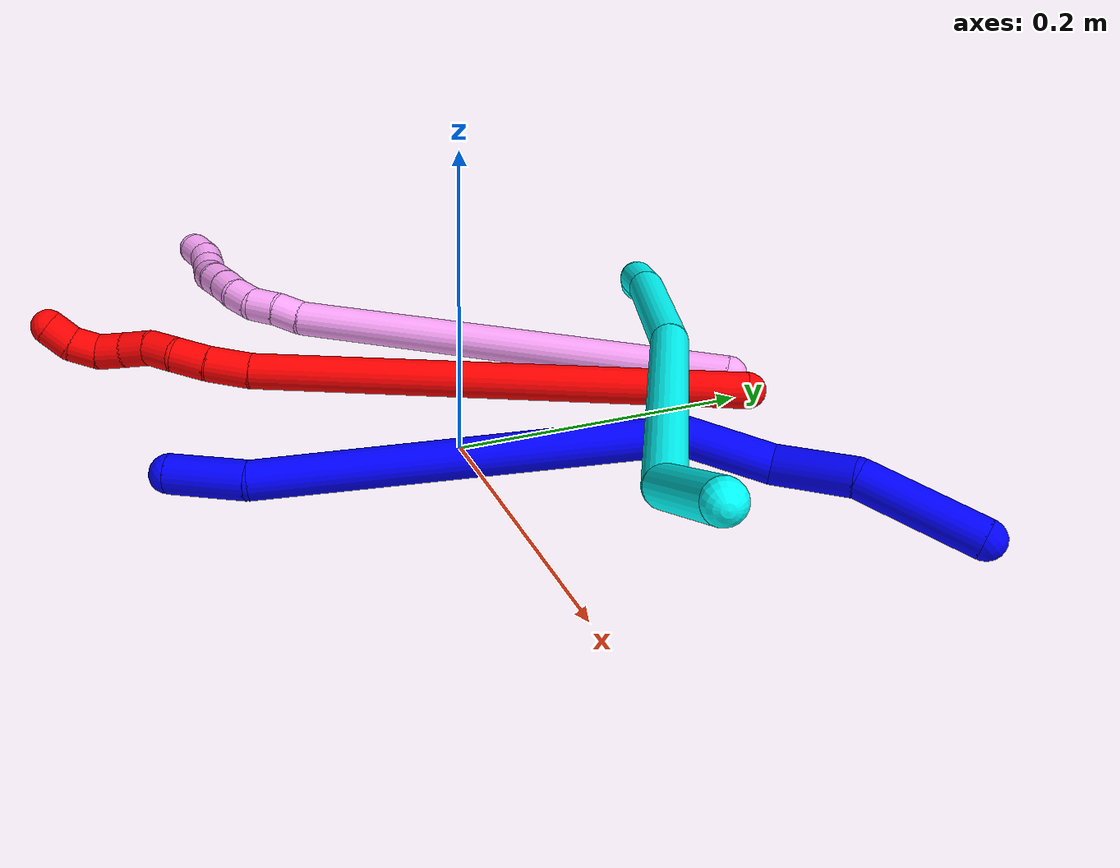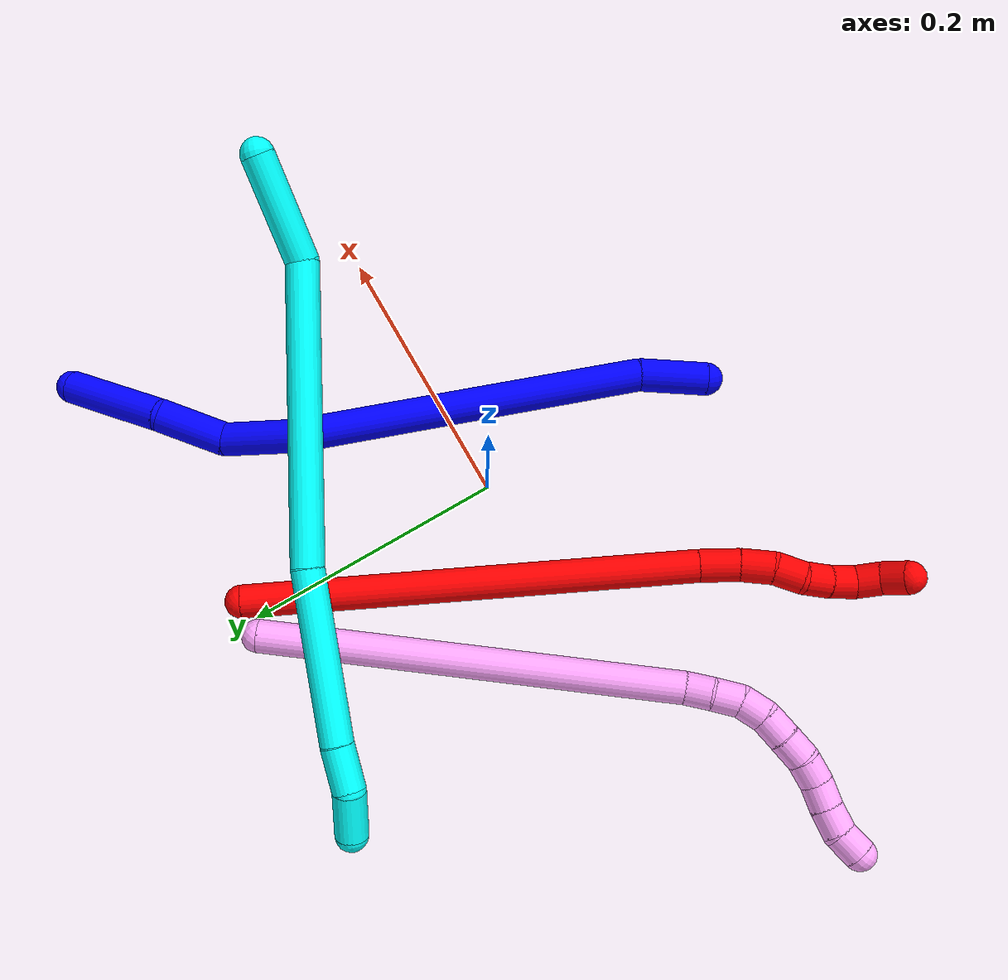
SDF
<sdf version="1.7">
 <world name="default">
  <plugin name="TubeGeneratorPlugin" filename="libtube_generator_plugin.so"/>
  <model name="photoneo_s_sensor">
   <static>1</static>
   <pose>0 0 2 1.57079 1.57079 3.14159</pose>
   <link name="link">
    <inertial><mass>0.1</mass></inertial>
    <sensor name="sensor" type="depth">
     <update_rate>30</update_rate>
     <camera>
      <horizontal_fov>1.22</horizontal_fov>
      <image><width>1920</width><height>1200</height><format>B8G8R8</format></image>
      <clip><near>0.1</near><far>4</far></clip>
      <depth_camera><output>points</output></depth_camera>
     </camera>
     <plugin name="camera_plugin" filename="libgazebo_ros_depth_camera.so">
      <baseline>0.2</baseline>
      <alwaysOn>1</alwaysOn>
      <updateRate>0.0</updateRate>
      <cameraName>camera_ir</cameraName>
      <imageTopicName>/camera/color/image_raw</imageTopicName>
      <cameraInfoTopicName>/camera/color/camera_info</cameraInfoTopicName>
      <depthImageTopicName>/camera/depth/image_raw</depthImageTopicName>
      <depthImageCameraInfoTopicName>/camera/depth/camera_info</depthImageCameraInfoTopicName>
      <pointCloudTopicName>/camera/depth/points</pointCloudTopicName>
      <frameName>fr_optical</frameName>
      <pointCloudCutoff>0.1</pointCloudCutoff>
      <pointCloudCutoffMax>2.0</pointCloudCutoffMax>
      <distortionK1>0</distortionK1>
      <distortionK2>0</distortionK2>
      <distortionK3>0</distortionK3>
      <distortionT1>0</distortionT1>
      <distortionT2>0</distortionT2>
      <CxPrime>0</CxPrime>
      <Cx>0</Cx>
      <Cy>0</Cy>
      <focalLength>0</focalLength>
      <hackBaseline>0</hackBaseline>
     </plugin>
    </sensor>
   </link>
  </model>
  <gravity>0 0 -9.8</gravity>
  <magnetic_field>6e-06 2.3e-05 -4.2e-05</magnetic_field>
  <atmosphere type="adiabatic"/>
  <physics name="default_physics" default="0" type="ode">
   <max_step_size>0.003</max_step_size>
   <real_time_factor>1</real_time_factor>
   <real_time_update_rate>1000</real_time_update_rate>
   <max_contacts>10000</max_contacts>
   <ode>
    <solver>
     <type>quick</type>
     <iters>100</iters>
     <sor>1.3</sor>
     <use_dynamic_moi_rescaling>0</use_dynamic_moi_rescaling>
    </solver>
    <constraints>
     <contact_max_correcting_vel>0</contact_max_correcting_vel>
     <contact_surface_layer>0.001</contact_surface_layer>
     <cfm>0</cfm>
     <erp>0.2</erp>
    </constraints>
   </ode>
  </physics>
  <scene><ambient>0.4 0.4 0.4 1</ambient><background>0.7 0.7 0.7 1</background><shadows>0</shadows></scene>
  <audio><device>default</device></audio>
  <spherical_coordinates>
   <surface_model>EARTH_WGS84</surface_model>
   <latitude_deg>0</latitude_deg>
   <longitude_deg>0</longitude_deg>
   <elevation>0</elevation>
   <heading_deg>0</heading_deg>
  </spherical_coordinates>
  <model name="bin">
   <static>1</static>
   <link name="bottom">
    <collision name="collision-bottom">
     <pose>0 0 -0.01 0 -0 0</pose>
     <geometry><box><size>0.8 0.6 0.02</size></box></geometry>
     <surface>
      <friction><ode><mu>100</mu><mu2>100</mu2></ode></friction>
      <contact><collide_bitmask>65535</collide_bitmask></contact>
     </surface>
    </collision>
   </link>
   <link name="west_wall">
    <collision name="collision-west_wall">
     <pose>-0.41 0 0.1 0 -0 0</pose>
     <geometry><box><size>0.02 0.6 0.2</size></box></geometry>
     <surface>
      <friction><ode><mu>100</mu><mu2>100</mu2></ode></friction>
      <contact><collide_bitmask>65535</collide_bitmask></contact>
     </surface>
    </collision>
   </link>
   <link name="east_wall">
    <collision name="collision-east_wall">
     <pose>0.41 0 0.1 0 -0 0</pose>
     <geometry><box><size>0.02 0.6 0.2</size></box></geometry>
     <surface>
      <friction><ode><mu>100</mu><mu2>100</mu2></ode></friction>
      <contact><collide_bitmask>65535</collide_bitmask></contact>
     </surface>
    </collision>
   </link>
   <link name="south_wall">
    <collision name="collision-south_wall">
     <pose>0 -0.31 0.1 0 -0 0</pose>
     <geometry><box><size>0.8 0.02 0.2</size></box></geometry>
     <surface>
      <friction><ode><mu>100</mu><mu2>100</mu2></ode></friction>
      <contact><collide_bitmask>65535</collide_bitmask></contact>
     </surface>
    </collision>
   </link>
   <link name="north_wall">
    <collision name="collision-north_wall">
     <pose>0 0.31 0.1 0 -0 0</pose>
     <geometry><box><size>0.8 0.02 0.2</size></box></geometry>
     <surface>
      <friction><ode><mu>100</mu><mu2>100</mu2></ode></friction>
      <contact><collide_bitmask>65535</collide_bitmask></contact>
     </surface>
    </collision>
   </link>
  </model>
  <model name="1">
   <static>0</static>
   <link name="1">
    <collision name="collision-cylinder-e_1_1_4">
     <pose>0.01556 0.009196 0.018321 -0.465224 0.649284 -0.15912</pose>
     <geometry><cylinder><radius>0.0125</radius><length>0.051472</length></cylinder></geometry>
     <surface>
      <friction><ode><mu>1.16</mu><mu2>1.16</mu2><slip1>0</slip1><slip2>0</slip2></ode></friction>
      <contact><ode><kp>1e+06</kp><kd>1</kd><max_vel>0</max_vel><min_depth>0.001</min_depth></ode></contact>
     </surface>
    </collision>
    <visual name="visual-cylinder-e_1_1_4">
     <pose>0.01556 0.009196 0.018321 -0.465224 0.649284 -0.15912</pose>
     <geometry><cylinder><radius>0.0125</radius><length>0.051472</length></cylinder></geometry>
     <material><ambient>0 0 1 1</ambient></material>
    </visual>
    <collision name="collision-cylinder-e_2_4_5">
     <pose>0.080433 0.075555 0.143858 -0.489808 0.385544 -0.09749</pose>
     <geometry><cylinder><radius>0.0125</radius><length>0.262256</length></cylinder></geometry>
     <surface>
      <friction><ode><mu>1.16</mu><mu2>1.16</mu2><slip1>0</slip1><slip2>0</slip2></ode></friction>
      <contact><ode><kp>1e+06</kp><kd>1</kd><max_vel>0</max_vel><min_depth>0.001</min_depth></ode></contact>
     </surface>
    </collision>
    <visual name="visual-cylinder-e_2_4_5">
     <pose>0.080433 0.075555 0.143858 -0.489808 0.385544 -0.09749</pose>
     <geometry><cylinder><radius>0.0125</radius><length>0.262256</length></cylinder></geometry>
     <material><ambient>0 0 1 1</ambient></material>
    </visual>
    <collision name="collision-cylinder-e_3_5_6">
     <pose>0.147384 0.149477 0.26589 -0.846908 0.667665 -0.310122</pose>
     <geometry><cylinder><radius>0.0125</radius><length>0.056974</length></cylinder></geometry>
     <surface>
      <friction><ode><mu>1.16</mu><mu2>1.16</mu2><slip1>0</slip1><slip2>0</slip2></ode></friction>
      <contact><ode><kp>1e+06</kp><kd>1</kd><max_vel>0</max_vel><min_depth>0.001</min_depth></ode></contact>
     </surface>
    </collision>
    <visual name="visual-cylinder-e_3_5_6">
     <pose>0.147384 0.149477 0.26589 -0.846908 0.667665 -0.310122</pose>
     <geometry><cylinder><radius>0.0125</radius><length>0.056974</length></cylinder></geometry>
     <material><ambient>0 0 1 1</ambient></material>
    </visual>
    <collision name="collision-cylinder-e_4_6_7">
     <pose>0.184958 0.169584 0.296692 -0.206421 0.884421 -0.098007</pose>
     <geometry><cylinder><radius>0.0125</radius><length>0.051545</length></cylinder></geometry>
     <surface>
      <friction><ode><mu>1.16</mu><mu2>1.16</mu2><slip1>0</slip1><slip2>0</slip2></ode></friction>
      <contact><ode><kp>1e+06</kp><kd>1</kd><max_vel>0</max_vel><min_depth>0.001</min_depth></ode></contact>
     </surface>
    </collision>
    <visual name="visual-cylinder-e_4_6_7">
     <pose>0.184958 0.169584 0.296692 -0.206421 0.884421 -0.098007</pose>
     <geometry><cylinder><radius>0.0125</radius><length>0.051545</length></cylinder></geometry>
     <material><ambient>0 0 1 1</ambient></material>
    </visual>
    <collision name="collision-cylinder-e_5_7_2">
     <pose>0.237505 0.18767 0.327867 -0.770331 0.995136 -0.433483</pose>
     <geometry><cylinder><radius>0.0125</radius><length>0.077753</length></cylinder></geometry>
     <surface>
      <friction><ode><mu>1.16</mu><mu2>1.16</mu2><slip1>0</slip1><slip2>0</slip2></ode></friction>
      <contact><ode><kp>1e+06</kp><kd>1</kd><max_vel>0</max_vel><min_depth>0.001</min_depth></ode></contact>
     </surface>
    </collision>
    <visual name="visual-cylinder-e_5_7_2">
     <pose>0.237505 0.18767 0.327867 -0.770331 0.995136 -0.433483</pose>
     <geometry><cylinder><radius>0.0125</radius><length>0.077753</length></cylinder></geometry>
     <material><ambient>0 0 1 1</ambient></material>
    </visual>
    <collision name="collision-sphere-2">
     <pose>0.270115 0.202408 0.343056 0 -0 0</pose>
     <geometry><sphere><radius>0.0125</radius></sphere></geometry>
     <surface>
      <friction><ode><mu>1.16</mu><mu2>1.16</mu2><slip1>0</slip1><slip2>0</slip2></ode></friction>
      <contact><ode><kp>1e+06</kp><kd>1</kd><max_vel>0</max_vel><min_depth>0.001</min_depth></ode></contact>
     </surface>
    </collision>
    <visual name="visual-sphere-2">
     <pose>0.270115 0.202408 0.343056 0 -0 0</pose>
     <geometry><sphere><radius>0.0125</radius></sphere></geometry>
     <material><ambient>0 0 1 1</ambient></material>
    </visual>
    <collision name="collision-sphere-7">
     <pose>0.204894 0.172932 0.312678 0 -0 0</pose>
     <geometry><sphere><radius>0.0125</radius></sphere></geometry>
     <surface>
      <friction><ode><mu>1.16</mu><mu2>1.16</mu2><slip1>0</slip1><slip2>0</slip2></ode></friction>
      <contact><ode><kp>1e+06</kp><kd>1</kd><max_vel>0</max_vel><min_depth>0.001</min_depth></ode></contact>
     </surface>
    </collision>
    <visual name="visual-sphere-7">
     <pose>0.204894 0.172932 0.312678 0 -0 0</pose>
     <geometry><sphere><radius>0.0125</radius></sphere></geometry>
     <material><ambient>0 0 1 1</ambient></material>
    </visual>
    <collision name="collision-sphere-6">
     <pose>0.165022 0.166237 0.280706 0 -0 0</pose>
     <geometry><sphere><radius>0.0125</radius></sphere></geometry>
     <surface>
      <friction><ode><mu>1.16</mu><mu2>1.16</mu2><slip1>0</slip1><slip2>0</slip2></ode></friction>
      <contact><ode><kp>1e+06</kp><kd>1</kd><max_vel>0</max_vel><min_depth>0.001</min_depth></ode></contact>
     </surface>
    </collision>
    <visual name="visual-sphere-6">
     <pose>0.165022 0.166237 0.280706 0 -0 0</pose>
     <geometry><sphere><radius>0.0125</radius></sphere></geometry>
     <material><ambient>0 0 1 1</ambient></material>
    </visual>
    <collision name="collision-sphere-5">
     <pose>0.129746 0.132716 0.251075 0 -0 0</pose>
     <geometry><sphere><radius>0.0125</radius></sphere></geometry>
     <surface>
      <friction><ode><mu>1.16</mu><mu2>1.16</mu2><slip1>0</slip1><slip2>0</slip2></ode></friction>
      <contact><ode><kp>1e+06</kp><kd>1</kd><max_vel>0</max_vel><min_depth>0.001</min_depth></ode></contact>
     </surface>
    </collision>
    <visual name="visual-sphere-5">
     <pose>0.129746 0.132716 0.251075 0 -0 0</pose>
     <geometry><sphere><radius>0.0125</radius></sphere></geometry>
     <material><ambient>0 0 1 1</ambient></material>
    </visual>
    <collision name="collision-sphere-1">
     <geometry><sphere><radius>0.0125</radius></sphere></geometry>
     <surface>
      <friction><ode><mu>1.16</mu><mu2>1.16</mu2><slip1>0</slip1><slip2>0</slip2></ode></friction>
      <contact><ode><kp>1e+06</kp><kd>1</kd><max_vel>0</max_vel><min_depth>0.001</min_depth></ode></contact>
     </surface>
    </collision>
    <visual name="visual-sphere-1">
     <geometry><sphere><radius>0.0125</radius></sphere></geometry>
     <material><ambient>0 0 1 1</ambient></material>
    </visual>
    <collision name="collision-sphere-4">
     <pose>0.031121 0.018393 0.036641 0 -0 0</pose>
     <geometry><sphere><radius>0.0125</radius></sphere></geometry>
     <surface>
      <friction><ode><mu>1.16</mu><mu2>1.16</mu2><slip1>0</slip1><slip2>0</slip2></ode></friction>
      <contact><ode><kp>1e+06</kp><kd>1</kd><max_vel>0</max_vel><min_depth>0.001</min_depth></ode></contact>
     </surface>
    </collision>
    <visual name="visual-sphere-4">
     <pose>0.031121 0.018393 0.036641 0 -0 0</pose>
     <geometry><sphere><radius>0.0125</radius></sphere></geometry>
     <material><ambient>0 0 1 1</ambient></material>
    </visual>
    <inertial>
     <pose>0.116585 0.104275 0.18921 0 -0 0</pose>
     <mass>0.5</mass>
     <inertia>
      <ixx>0.001317</ixx>
      <ixy>0</ixy>
      <ixz>0</ixz>
      <iyy>0.001295</iyy>
      <iyz>0</iyz>
      <izz>-0.0013</izz>
     </inertia>
    </inertial>
   </link>
   <pose>-0.011348 -0.184991 0.012404 -0.869664 0.242843 0.110497</pose>
  </model>
  <model name="2">
   <static>0</static>
   <link name="2">
    <collision name="collision-cylinder-e_1_1_4">
     <pose>-0.064996 -0.154503 0.031432 1.3701 -0.391011 -0.320827</pose>
     <geometry><cylinder><radius>0.0125</radius><length>0.341078</length></cylinder></geometry>
     <surface>
      <friction><ode><mu>1.16</mu><mu2>1.16</mu2><slip1>0</slip1><slip2>0</slip2></ode></friction>
      <contact><ode><kp>1e+06</kp><kd>1</kd><max_vel>0</max_vel><min_depth>0.001</min_depth></ode></contact>
     </surface>
    </collision>
    <visual name="visual-cylinder-e_1_1_4">
     <pose>-0.064996 -0.154503 0.031432 1.3701 -0.391011 -0.320827</pose>
     <geometry><cylinder><radius>0.0125</radius><length>0.341078</length></cylinder></geometry>
     <material><ambient>1 0 0 1</ambient></material>
    </visual>
    <collision name="collision-cylinder-e_2_4_5">
     <pose>-0.135421 -0.322531 0.067508 1.24001 -0.362782 -0.260393</pose>
     <geometry><cylinder><radius>0.0125</radius><length>0.030594</length></cylinder></geometry>
     <surface>
      <friction><ode><mu>1.16</mu><mu2>1.16</mu2><slip1>0</slip1><slip2>0</slip2></ode></friction>
      <contact><ode><kp>1e+06</kp><kd>1</kd><max_vel>0</max_vel><min_depth>0.001</min_depth></ode></contact>
     </surface>
    </collision>
    <visual name="visual-cylinder-e_2_4_5">
     <pose>-0.135421 -0.322531 0.067508 1.24001 -0.362782 -0.260393</pose>
     <geometry><cylinder><radius>0.0125</radius><length>0.030594</length></cylinder></geometry>
     <material><ambient>1 0 0 1</ambient></material>
    </visual>
    <collision name="collision-cylinder-e_3_5_6">
     <pose>-0.145853 -0.346325 0.077238 1.11093 -0.411686 -0.257748</pose>
     <geometry><cylinder><radius>0.0125</radius><length>0.025005</length></cylinder></geometry>
     <surface>
      <friction><ode><mu>1.16</mu><mu2>1.16</mu2><slip1>0</slip1><slip2>0</slip2></ode></friction>
      <contact><ode><kp>1e+06</kp><kd>1</kd><max_vel>0</max_vel><min_depth>0.001</min_depth></ode></contact>
     </surface>
    </collision>
    <visual name="visual-cylinder-e_3_5_6">
     <pose>-0.145853 -0.346325 0.077238 1.11093 -0.411686 -0.257748</pose>
     <geometry><cylinder><radius>0.0125</radius><length>0.025005</length></cylinder></geometry>
     <material><ambient>1 0 0 1</ambient></material>
    </visual>
    <collision name="collision-cylinder-e_4_6_7">
     <pose>-0.157563 -0.363989 0.087103 0.997139 -0.650859 -0.363369</pose>
     <geometry><cylinder><radius>0.0125</radius><length>0.02214</length></cylinder></geometry>
     <surface>
      <friction><ode><mu>1.16</mu><mu2>1.16</mu2><slip1>0</slip1><slip2>0</slip2></ode></friction>
      <contact><ode><kp>1e+06</kp><kd>1</kd><max_vel>0</max_vel><min_depth>0.001</min_depth></ode></contact>
     </surface>
    </collision>
    <visual name="visual-cylinder-e_4_6_7">
     <pose>-0.157563 -0.363989 0.087103 0.997139 -0.650859 -0.363369</pose>
     <geometry><cylinder><radius>0.0125</radius><length>0.02214</length></cylinder></geometry>
     <material><ambient>1 0 0 1</ambient></material>
    </visual>
    <collision name="collision-cylinder-e_5_7_8">
     <pose>-0.170595 -0.379064 0.093237 1.39614 -0.681676 -0.578462</pose>
     <geometry><cylinder><radius>0.0125</radius><length>0.020079</length></cylinder></geometry>
     <surface>
      <friction><ode><mu>1.16</mu><mu2>1.16</mu2><slip1>0</slip1><slip2>0</slip2></ode></friction>
      <contact><ode><kp>1e+06</kp><kd>1</kd><max_vel>0</max_vel><min_depth>0.001</min_depth></ode></contact>
     </surface>
    </collision>
    <visual name="visual-cylinder-e_5_7_8">
     <pose>-0.170595 -0.379064 0.093237 1.39614 -0.681676 -0.578462</pose>
     <geometry><cylinder><radius>0.0125</radius><length>0.020079</length></cylinder></geometry>
     <material><ambient>1 0 0 1</ambient></material>
    </visual>
    <collision name="collision-cylinder-e_6_8_9">
     <pose>-0.182415 -0.395369 0.09581 1.43057 -0.562543 -0.49186</pose>
     <geometry><cylinder><radius>0.0125</radius><length>0.020601</length></cylinder></geometry>
     <surface>
      <friction><ode><mu>1.16</mu><mu2>1.16</mu2><slip1>0</slip1><slip2>0</slip2></ode></friction>
      <contact><ode><kp>1e+06</kp><kd>1</kd><max_vel>0</max_vel><min_depth>0.001</min_depth></ode></contact>
     </surface>
    </collision>
    <visual name="visual-cylinder-e_6_8_9">
     <pose>-0.182415 -0.395369 0.09581 1.43057 -0.562543 -0.49186</pose>
     <geometry><cylinder><radius>0.0125</radius><length>0.020601</length></cylinder></geometry>
     <material><ambient>1 0 0 1</ambient></material>
    </visual>
    <collision name="collision-cylinder-e_7_9_10">
     <pose>-0.189438 -0.413375 0.100836 1.18507 -0.149926 -0.101038</pose>
     <geometry><cylinder><radius>0.0125</radius><length>0.020474</length></cylinder></geometry>
     <surface>
      <friction><ode><mu>1.16</mu><mu2>1.16</mu2><slip1>0</slip1><slip2>0</slip2></ode></friction>
      <contact><ode><kp>1e+06</kp><kd>1</kd><max_vel>0</max_vel><min_depth>0.001</min_depth></ode></contact>
     </surface>
    </collision>
    <visual name="visual-cylinder-e_7_9_10">
     <pose>-0.189438 -0.413375 0.100836 1.18507 -0.149926 -0.101038</pose>
     <geometry><cylinder><radius>0.0125</radius><length>0.020474</length></cylinder></geometry>
     <material><ambient>1 0 0 1</ambient></material>
    </visual>
    <collision name="collision-cylinder-e_8_10_2">
     <pose>-0.190799 -0.430346 0.111172 0.860655 0.016792 0.007708</pose>
     <geometry><cylinder><radius>0.0125</radius><length>0.02003</length></cylinder></geometry>
     <surface>
      <friction><ode><mu>1.16</mu><mu2>1.16</mu2><slip1>0</slip1><slip2>0</slip2></ode></friction>
      <contact><ode><kp>1e+06</kp><kd>1</kd><max_vel>0</max_vel><min_depth>0.001</min_depth></ode></contact>
     </surface>
    </collision>
    <visual name="visual-cylinder-e_8_10_2">
     <pose>-0.190799 -0.430346 0.111172 0.860655 0.016792 0.007708</pose>
     <geometry><cylinder><radius>0.0125</radius><length>0.02003</length></cylinder></geometry>
     <material><ambient>1 0 0 1</ambient></material>
    </visual>
    <collision name="collision-sphere-2">
     <pose>-0.19063 -0.437939 0.1177 0 -0 0</pose>
     <geometry><sphere><radius>0.0125</radius></sphere></geometry>
     <surface>
      <friction><ode><mu>1.16</mu><mu2>1.16</mu2><slip1>0</slip1><slip2>0</slip2></ode></friction>
      <contact><ode><kp>1e+06</kp><kd>1</kd><max_vel>0</max_vel><min_depth>0.001</min_depth></ode></contact>
     </surface>
    </collision>
    <visual name="visual-sphere-2">
     <pose>-0.19063 -0.437939 0.1177 0 -0 0</pose>
     <geometry><sphere><radius>0.0125</radius></sphere></geometry>
     <material><ambient>1 0 0 1</ambient></material>
    </visual>
    <collision name="collision-sphere-10">
     <pose>-0.190967 -0.422753 0.104644 0 -0 0</pose>
     <geometry><sphere><radius>0.0125</radius></sphere></geometry>
     <surface>
      <friction><ode><mu>1.16</mu><mu2>1.16</mu2><slip1>0</slip1><slip2>0</slip2></ode></friction>
      <contact><ode><kp>1e+06</kp><kd>1</kd><max_vel>0</max_vel><min_depth>0.001</min_depth></ode></contact>
     </surface>
    </collision>
    <visual name="visual-sphere-10">
     <pose>-0.190967 -0.422753 0.104644 0 -0 0</pose>
     <geometry><sphere><radius>0.0125</radius></sphere></geometry>
     <material><ambient>1 0 0 1</ambient></material>
    </visual>
    <collision name="collision-sphere-9">
     <pose>-0.187909 -0.403996 0.097028 0 -0 0</pose>
     <geometry><sphere><radius>0.0125</radius></sphere></geometry>
     <surface>
      <friction><ode><mu>1.16</mu><mu2>1.16</mu2><slip1>0</slip1><slip2>0</slip2></ode></friction>
      <contact><ode><kp>1e+06</kp><kd>1</kd><max_vel>0</max_vel><min_depth>0.001</min_depth></ode></contact>
     </surface>
    </collision>
    <visual name="visual-sphere-9">
     <pose>-0.187909 -0.403996 0.097028 0 -0 0</pose>
     <geometry><sphere><radius>0.0125</radius></sphere></geometry>
     <material><ambient>1 0 0 1</ambient></material>
    </visual>
    <collision name="collision-sphere-4">
     <pose>-0.129993 -0.309005 0.062863 0 -0 0</pose>
     <geometry><sphere><radius>0.0125</radius></sphere></geometry>
     <surface>
      <friction><ode><mu>1.16</mu><mu2>1.16</mu2><slip1>0</slip1><slip2>0</slip2></ode></friction>
      <contact><ode><kp>1e+06</kp><kd>1</kd><max_vel>0</max_vel><min_depth>0.001</min_depth></ode></contact>
     </surface>
    </collision>
    <visual name="visual-sphere-4">
     <pose>-0.129993 -0.309005 0.062863 0 -0 0</pose>
     <geometry><sphere><radius>0.0125</radius></sphere></geometry>
     <material><ambient>1 0 0 1</ambient></material>
    </visual>
    <collision name="collision-sphere-1">
     <geometry><sphere><radius>0.0125</radius></sphere></geometry>
     <surface>
      <friction><ode><mu>1.16</mu><mu2>1.16</mu2><slip1>0</slip1><slip2>0</slip2></ode></friction>
      <contact><ode><kp>1e+06</kp><kd>1</kd><max_vel>0</max_vel><min_depth>0.001</min_depth></ode></contact>
     </surface>
    </collision>
    <visual name="visual-sphere-1">
     <geometry><sphere><radius>0.0125</radius></sphere></geometry>
     <material><ambient>1 0 0 1</ambient></material>
    </visual>
    <collision name="collision-sphere-8">
     <pose>-0.176921 -0.386741 0.094592 0 -0 0</pose>
     <geometry><sphere><radius>0.0125</radius></sphere></geometry>
     <surface>
      <friction><ode><mu>1.16</mu><mu2>1.16</mu2><slip1>0</slip1><slip2>0</slip2></ode></friction>
      <contact><ode><kp>1e+06</kp><kd>1</kd><max_vel>0</max_vel><min_depth>0.001</min_depth></ode></contact>
     </surface>
    </collision>
    <visual name="visual-sphere-8">
     <pose>-0.176921 -0.386741 0.094592 0 -0 0</pose>
     <geometry><sphere><radius>0.0125</radius></sphere></geometry>
     <material><ambient>1 0 0 1</ambient></material>
    </visual>
    <collision name="collision-sphere-5">
     <pose>-0.14085 -0.336057 0.072153 0 -0 0</pose>
     <geometry><sphere><radius>0.0125</radius></sphere></geometry>
     <surface>
      <friction><ode><mu>1.16</mu><mu2>1.16</mu2><slip1>0</slip1><slip2>0</slip2></ode></friction>
      <contact><ode><kp>1e+06</kp><kd>1</kd><max_vel>0</max_vel><min_depth>0.001</min_depth></ode></contact>
     </surface>
    </collision>
    <visual name="visual-sphere-5">
     <pose>-0.14085 -0.336057 0.072153 0 -0 0</pose>
     <geometry><sphere><radius>0.0125</radius></sphere></geometry>
     <material><ambient>1 0 0 1</ambient></material>
    </visual>
    <collision name="collision-sphere-6">
     <pose>-0.150856 -0.356592 0.082324 0 -0 0</pose>
     <geometry><sphere><radius>0.0125</radius></sphere></geometry>
     <surface>
      <friction><ode><mu>1.16</mu><mu2>1.16</mu2><slip1>0</slip1><slip2>0</slip2></ode></friction>
      <contact><ode><kp>1e+06</kp><kd>1</kd><max_vel>0</max_vel><min_depth>0.001</min_depth></ode></contact>
     </surface>
    </collision>
    <visual name="visual-sphere-6">
     <pose>-0.150856 -0.356592 0.082324 0 -0 0</pose>
     <geometry><sphere><radius>0.0125</radius></sphere></geometry>
     <material><ambient>1 0 0 1</ambient></material>
    </visual>
    <collision name="collision-sphere-7">
     <pose>-0.16427 -0.371386 0.091883 0 -0 0</pose>
     <geometry><sphere><radius>0.0125</radius></sphere></geometry>
     <surface>
      <friction><ode><mu>1.16</mu><mu2>1.16</mu2><slip1>0</slip1><slip2>0</slip2></ode></friction>
      <contact><ode><kp>1e+06</kp><kd>1</kd><max_vel>0</max_vel><min_depth>0.001</min_depth></ode></contact>
     </surface>
    </collision>
    <visual name="visual-sphere-7">
     <pose>-0.16427 -0.371386 0.091883 0 -0 0</pose>
     <geometry><sphere><radius>0.0125</radius></sphere></geometry>
     <material><ambient>1 0 0 1</ambient></material>
    </visual>
    <inertial>
     <pose>-0.096662 -0.224245 0.049566 0 -0 0</pose>
     <mass>0.5</mass>
     <inertia><ixx>0.001938</ixx><ixy>0</ixy><ixz>0</ixz><iyy>2e-05</iyy><iyz>0</iyz><izz>0.004299</izz></inertia>
    </inertial>
   </link>
   <pose>0.014627 0.202173 0.012439 -0.15413 -0.699908 0.080952</pose>
  </model>
  <model name="3">
   <static>0</static>
   <link name="3">
    <collision name="collision-cylinder-e_1_1_4">
     <pose>0.006557 0.011089 -0.037798 -2.85622 0.164948 -1.04425</pose>
     <geometry><cylinder><radius>0.0125</radius><length>0.079867</length></cylinder></geometry>
     <surface>
      <friction><ode><mu>1.16</mu><mu2>1.16</mu2><slip1>0</slip1><slip2>0</slip2></ode></friction>
      <contact><ode><kp>1e+06</kp><kd>1</kd><max_vel>0</max_vel><min_depth>0.001</min_depth></ode></contact>
     </surface>
    </collision>
    <visual name="visual-cylinder-e_1_1_4">
     <pose>0.006557 0.011089 -0.037798 -2.85622 0.164948 -1.04425</pose>
     <geometry><cylinder><radius>0.0125</radius><length>0.079867</length></cylinder></geometry>
     <material><ambient>0.003922 1 0.996078 1</ambient></material>
    </visual>
    <collision name="collision-cylinder-e_2_4_5">
     <pose>-0.008213 0.014715 -0.183865 3.07277 -0.194045 -2.46164</pose>
     <geometry><cylinder><radius>0.0125</radius><length>0.221203</length></cylinder></geometry>
     <surface>
      <friction><ode><mu>1.16</mu><mu2>1.16</mu2><slip1>0</slip1><slip2>0</slip2></ode></friction>
      <contact><ode><kp>1e+06</kp><kd>1</kd><max_vel>0</max_vel><min_depth>0.001</min_depth></ode></contact>
     </surface>
    </collision>
    <visual name="visual-cylinder-e_2_4_5">
     <pose>-0.008213 0.014715 -0.183865 3.07277 -0.194045 -2.46164</pose>
     <geometry><cylinder><radius>0.0125</radius><length>0.221203</length></cylinder></geometry>
     <material><ambient>0.003922 1 0.996078 1</ambient></material>
    </visual>
    <collision name="collision-cylinder-e_3_5_6">
     <pose>-0.032697 0.004941 -0.355505 3.10515 -0.049743 -1.87719</pose>
     <geometry><cylinder><radius>0.0125</radius><length>0.126983</length></cylinder></geometry>
     <surface>
      <friction><ode><mu>1.16</mu><mu2>1.16</mu2><slip1>0</slip1><slip2>0</slip2></ode></friction>
      <contact><ode><kp>1e+06</kp><kd>1</kd><max_vel>0</max_vel><min_depth>0.001</min_depth></ode></contact>
     </surface>
    </collision>
    <visual name="visual-cylinder-e_3_5_6">
     <pose>-0.032697 0.004941 -0.355505 3.10515 -0.049743 -1.87719</pose>
     <geometry><cylinder><radius>0.0125</radius><length>0.126983</length></cylinder></geometry>
     <material><ambient>0.003922 1 0.996078 1</ambient></material>
    </visual>
    <collision name="collision-cylinder-e_4_6_7">
     <pose>-0.035223 0.003061 -0.435957 -3.11647 0.036951 -1.94733</pose>
     <geometry><cylinder><radius>0.0125</radius><length>0.034197</length></cylinder></geometry>
     <surface>
      <friction><ode><mu>1.16</mu><mu2>1.16</mu2><slip1>0</slip1><slip2>0</slip2></ode></friction>
      <contact><ode><kp>1e+06</kp><kd>1</kd><max_vel>0</max_vel><min_depth>0.001</min_depth></ode></contact>
     </surface>
    </collision>
    <visual name="visual-cylinder-e_4_6_7">
     <pose>-0.035223 0.003061 -0.435957 -3.11647 0.036951 -1.94733</pose>
     <geometry><cylinder><radius>0.0125</radius><length>0.034197</length></cylinder></geometry>
     <material><ambient>0.003922 1 0.996078 1</ambient></material>
    </visual>
    <collision name="collision-cylinder-e_5_7_2">
     <pose>-0.037887 0.010237 -0.470355 -2.77004 -0.175536 0.875761</pose>
     <geometry><cylinder><radius>0.0125</radius><length>0.037751</length></cylinder></geometry>
     <surface>
      <friction><ode><mu>1.16</mu><mu2>1.16</mu2><slip1>0</slip1><slip2>0</slip2></ode></friction>
      <contact><ode><kp>1e+06</kp><kd>1</kd><max_vel>0</max_vel><min_depth>0.001</min_depth></ode></contact>
     </surface>
    </collision>
    <visual name="visual-cylinder-e_5_7_2">
     <pose>-0.037887 0.010237 -0.470355 -2.77004 -0.175536 0.875761</pose>
     <geometry><cylinder><radius>0.0125</radius><length>0.037751</length></cylinder></geometry>
     <material><ambient>0.003922 1 0.996078 1</ambient></material>
    </visual>
    <collision name="collision-sphere-2">
     <pose>-0.041184 0.016985 -0.487673 0 -0 0</pose>
     <geometry><sphere><radius>0.0125</radius></sphere></geometry>
     <surface>
      <friction><ode><mu>1.16</mu><mu2>1.16</mu2><slip1>0</slip1><slip2>0</slip2></ode></friction>
      <contact><ode><kp>1e+06</kp><kd>1</kd><max_vel>0</max_vel><min_depth>0.001</min_depth></ode></contact>
     </surface>
    </collision>
    <visual name="visual-sphere-2">
     <pose>-0.041184 0.016985 -0.487673 0 -0 0</pose>
     <geometry><sphere><radius>0.0125</radius></sphere></geometry>
     <material><ambient>0.003922 1 0.996078 1</ambient></material>
    </visual>
    <collision name="collision-sphere-7">
     <pose>-0.034591 0.00349 -0.453038 0 -0 0</pose>
     <geometry><sphere><radius>0.0125</radius></sphere></geometry>
     <surface>
      <friction><ode><mu>1.16</mu><mu2>1.16</mu2><slip1>0</slip1><slip2>0</slip2></ode></friction>
      <contact><ode><kp>1e+06</kp><kd>1</kd><max_vel>0</max_vel><min_depth>0.001</min_depth></ode></contact>
     </surface>
    </collision>
    <visual name="visual-sphere-7">
     <pose>-0.034591 0.00349 -0.453038 0 -0 0</pose>
     <geometry><sphere><radius>0.0125</radius></sphere></geometry>
     <material><ambient>0.003922 1 0.996078 1</ambient></material>
    </visual>
    <collision name="collision-sphere-6">
     <pose>-0.035854 0.002631 -0.418876 0 -0 0</pose>
     <geometry><sphere><radius>0.0125</radius></sphere></geometry>
     <surface>
      <friction><ode><mu>1.16</mu><mu2>1.16</mu2><slip1>0</slip1><slip2>0</slip2></ode></friction>
      <contact><ode><kp>1e+06</kp><kd>1</kd><max_vel>0</max_vel><min_depth>0.001</min_depth></ode></contact>
     </surface>
    </collision>
    <visual name="visual-sphere-6">
     <pose>-0.035854 0.002631 -0.418876 0 -0 0</pose>
     <geometry><sphere><radius>0.0125</radius></sphere></geometry>
     <material><ambient>0.003922 1 0.996078 1</ambient></material>
    </visual>
    <collision name="collision-sphere-5">
     <pose>-0.02954 0.007252 -0.292134 0 -0 0</pose>
     <geometry><sphere><radius>0.0125</radius></sphere></geometry>
     <surface>
      <friction><ode><mu>1.16</mu><mu2>1.16</mu2><slip1>0</slip1><slip2>0</slip2></ode></friction>
      <contact><ode><kp>1e+06</kp><kd>1</kd><max_vel>0</max_vel><min_depth>0.001</min_depth></ode></contact>
     </surface>
    </collision>
    <visual name="visual-sphere-5">
     <pose>-0.02954 0.007252 -0.292134 0 -0 0</pose>
     <geometry><sphere><radius>0.0125</radius></sphere></geometry>
     <material><ambient>0.003922 1 0.996078 1</ambient></material>
    </visual>
    <collision name="collision-sphere-1">
     <geometry><sphere><radius>0.0125</radius></sphere></geometry>
     <surface>
      <friction><ode><mu>1.16</mu><mu2>1.16</mu2><slip1>0</slip1><slip2>0</slip2></ode></friction>
      <contact><ode><kp>1e+06</kp><kd>1</kd><max_vel>0</max_vel><min_depth>0.001</min_depth></ode></contact>
     </surface>
    </collision>
    <visual name="visual-sphere-1">
     <geometry><sphere><radius>0.0125</radius></sphere></geometry>
     <material><ambient>0.003922 1 0.996078 1</ambient></material>
    </visual>
    <collision name="collision-sphere-4">
     <pose>0.013114 0.022178 -0.075596 0 -0 0</pose>
     <geometry><sphere><radius>0.0125</radius></sphere></geometry>
     <surface>
      <friction><ode><mu>1.16</mu><mu2>1.16</mu2><slip1>0</slip1><slip2>0</slip2></ode></friction>
      <contact><ode><kp>1e+06</kp><kd>1</kd><max_vel>0</max_vel><min_depth>0.001</min_depth></ode></contact>
     </surface>
    </collision>
    <visual name="visual-sphere-4">
     <pose>0.013114 0.022178 -0.075596 0 -0 0</pose>
     <geometry><sphere><radius>0.0125</radius></sphere></geometry>
     <material><ambient>0.003922 1 0.996078 1</ambient></material>
    </visual>
    <inertial>
     <pose>-0.01616 0.010519 -0.242996 0 -0 0</pose>
     <mass>0.5</mass>
     <inertia>
      <ixx>-0.001494</ixx>
      <ixy>0</ixy>
      <ixz>0</ixz>
      <iyy>-2.1e-05</iyy>
      <iyz>0</iyz>
      <izz>0.000193</izz>
     </inertia>
    </inertial>
   </link>
   <pose>0.270775 0.03187 0.109472 -1.40682 -0.00168 -1.87147</pose>
  </model>
  <model name="4">
   <static>0</static>
   <link name="4">
    <collision name="collision-cylinder-e_1_1_4">
     <pose>-0.101044 -0.087947 0.085402 0.80008 -0.689355 -0.301306</pose>
     <geometry><cylinder><radius>0.0125</radius><length>0.31773</length></cylinder></geometry>
     <surface>
      <friction><ode><mu>1.16</mu><mu2>1.16</mu2><slip1>0</slip1><slip2>0</slip2></ode></friction>
      <contact><ode><kp>1e+06</kp><kd>1</kd><max_vel>0</max_vel><min_depth>0.001</min_depth></ode></contact>
     </surface>
    </collision>
    <visual name="visual-cylinder-e_1_1_4">
     <pose>-0.101044 -0.087947 0.085402 0.80008 -0.689355 -0.301306</pose>
     <geometry><cylinder><radius>0.0125</radius><length>0.31773</length></cylinder></geometry>
     <material><ambient>1 0.65098 0.996078 1</ambient></material>
    </visual>
    <collision name="collision-cylinder-e_2_4_5">
     <pose>-0.210025 -0.179976 0.175826 0.682466 -0.886594 -0.334094</pose>
     <geometry><cylinder><radius>0.0125</radius><length>0.020481</length></cylinder></geometry>
     <surface>
      <friction><ode><mu>1.16</mu><mu2>1.16</mu2><slip1>0</slip1><slip2>0</slip2></ode></friction>
      <contact><ode><kp>1e+06</kp><kd>1</kd><max_vel>0</max_vel><min_depth>0.001</min_depth></ode></contact>
     </surface>
    </collision>
    <visual name="visual-cylinder-e_2_4_5">
     <pose>-0.210025 -0.179976 0.175826 0.682466 -0.886594 -0.334094</pose>
     <geometry><cylinder><radius>0.0125</radius><length>0.020481</length></cylinder></geometry>
     <material><ambient>1 0.65098 0.996078 1</ambient></material>
    </visual>
    <collision name="collision-cylinder-e_3_5_6">
     <pose>-0.225451 -0.18981 0.185438 0.897291 -0.794316 -0.398474</pose>
     <geometry><cylinder><radius>0.0125</radius><length>0.020999</length></cylinder></geometry>
     <surface>
      <friction><ode><mu>1.16</mu><mu2>1.16</mu2><slip1>0</slip1><slip2>0</slip2></ode></friction>
      <contact><ode><kp>1e+06</kp><kd>1</kd><max_vel>0</max_vel><min_depth>0.001</min_depth></ode></contact>
     </surface>
    </collision>
    <visual name="visual-cylinder-e_3_5_6">
     <pose>-0.225451 -0.18981 0.185438 0.897291 -0.794316 -0.398474</pose>
     <geometry><cylinder><radius>0.0125</radius><length>0.020999</length></cylinder></geometry>
     <material><ambient>1 0.65098 0.996078 1</ambient></material>
    </visual>
    <collision name="collision-cylinder-e_4_6_7">
     <pose>-0.2418 -0.200298 0.191473 1.27469 -1.06101 -0.819494</pose>
     <geometry><cylinder><radius>0.0125</radius><length>0.020299</length></cylinder></geometry>
     <surface>
      <friction><ode><mu>1.16</mu><mu2>1.16</mu2><slip1>0</slip1><slip2>0</slip2></ode></friction>
      <contact><ode><kp>1e+06</kp><kd>1</kd><max_vel>0</max_vel><min_depth>0.001</min_depth></ode></contact>
     </surface>
    </collision>
    <visual name="visual-cylinder-e_4_6_7">
     <pose>-0.2418 -0.200298 0.191473 1.27469 -1.06101 -0.819494</pose>
     <geometry><cylinder><radius>0.0125</radius><length>0.020299</length></cylinder></geometry>
     <material><ambient>1 0.65098 0.996078 1</ambient></material>
    </visual>
    <collision name="collision-cylinder-e_5_7_8">
     <pose>-0.259406 -0.209953 0.191553 1.84152 -1.04264 -1.29392</pose>
     <geometry><cylinder><radius>0.0125</radius><length>0.020256</length></cylinder></geometry>
     <surface>
      <friction><ode><mu>1.16</mu><mu2>1.16</mu2><slip1>0</slip1><slip2>0</slip2></ode></friction>
      <contact><ode><kp>1e+06</kp><kd>1</kd><max_vel>0</max_vel><min_depth>0.001</min_depth></ode></contact>
     </surface>
    </collision>
    <visual name="visual-cylinder-e_5_7_8">
     <pose>-0.259406 -0.209953 0.191553 1.84152 -1.04264 -1.29392</pose>
     <geometry><cylinder><radius>0.0125</radius><length>0.020256</length></cylinder></geometry>
     <material><ambient>1 0.65098 0.996078 1</ambient></material>
    </visual>
    <collision name="collision-cylinder-e_6_8_9">
     <pose>-0.276418 -0.220353 0.188695 1.83672 -0.968483 -1.20586</pose>
     <geometry><cylinder><radius>0.0125</radius><length>0.020056</length></cylinder></geometry>
     <surface>
      <friction><ode><mu>1.16</mu><mu2>1.16</mu2><slip1>0</slip1><slip2>0</slip2></ode></friction>
      <contact><ode><kp>1e+06</kp><kd>1</kd><max_vel>0</max_vel><min_depth>0.001</min_depth></ode></contact>
     </surface>
    </collision>
    <visual name="visual-cylinder-e_6_8_9">
     <pose>-0.276418 -0.220353 0.188695 1.83672 -0.968483 -1.20586</pose>
     <geometry><cylinder><radius>0.0125</radius><length>0.020056</length></cylinder></geometry>
     <material><ambient>1 0.65098 0.996078 1</ambient></material>
    </visual>
    <collision name="collision-cylinder-e_7_9_10">
     <pose>-0.291741 -0.231994 0.183697 2.0881 -0.783478 -1.23524</pose>
     <geometry><cylinder><radius>0.0125</radius><length>0.020007</length></cylinder></geometry>
     <surface>
      <friction><ode><mu>1.16</mu><mu2>1.16</mu2><slip1>0</slip1><slip2>0</slip2></ode></friction>
      <contact><ode><kp>1e+06</kp><kd>1</kd><max_vel>0</max_vel><min_depth>0.001</min_depth></ode></contact>
     </surface>
    </collision>
    <visual name="visual-cylinder-e_7_9_10">
     <pose>-0.291741 -0.231994 0.183697 2.0881 -0.783478 -1.23524</pose>
     <geometry><cylinder><radius>0.0125</radius><length>0.020007</length></cylinder></geometry>
     <material><ambient>1 0.65098 0.996078 1</ambient></material>
    </visual>
    <collision name="collision-cylinder-e_8_10_11">
     <pose>-0.306685 -0.242142 0.175505 2.4367 -0.908025 -1.8499</pose>
     <geometry><cylinder><radius>0.0125</radius><length>0.020003</length></cylinder></geometry>
     <surface>
      <friction><ode><mu>1.16</mu><mu2>1.16</mu2><slip1>0</slip1><slip2>0</slip2></ode></friction>
      <contact><ode><kp>1e+06</kp><kd>1</kd><max_vel>0</max_vel><min_depth>0.001</min_depth></ode></contact>
     </surface>
    </collision>
    <visual name="visual-cylinder-e_8_10_11">
     <pose>-0.306685 -0.242142 0.175505 2.4367 -0.908025 -1.8499</pose>
     <geometry><cylinder><radius>0.0125</radius><length>0.020003</length></cylinder></geometry>
     <material><ambient>1 0.65098 0.996078 1</ambient></material>
    </visual>
    <collision name="collision-cylinder-e_9_11_12">
     <pose>-0.323044 -0.249832 0.166925 2.38124 -1.00583 -1.88507</pose>
     <geometry><cylinder><radius>0.0125</radius><length>0.020068</length></cylinder></geometry>
     <surface>
      <friction><ode><mu>1.16</mu><mu2>1.16</mu2><slip1>0</slip1><slip2>0</slip2></ode></friction>
      <contact><ode><kp>1e+06</kp><kd>1</kd><max_vel>0</max_vel><min_depth>0.001</min_depth></ode></contact>
     </surface>
    </collision>
    <visual name="visual-cylinder-e_9_11_12">
     <pose>-0.323044 -0.249832 0.166925 2.38124 -1.00583 -1.88507</pose>
     <geometry><cylinder><radius>0.0125</radius><length>0.020068</length></cylinder></geometry>
     <material><ambient>1 0.65098 0.996078 1</ambient></material>
    </visual>
    <collision name="collision-cylinder-e_10_12_2">
     <pose>-0.340271 -0.258386 0.162101 1.76041 -1.05682 -1.23012</pose>
     <geometry><cylinder><radius>0.0125</radius><length>0.020101</length></cylinder></geometry>
     <surface>
      <friction><ode><mu>1.16</mu><mu2>1.16</mu2><slip1>0</slip1><slip2>0</slip2></ode></friction>
      <contact><ode><kp>1e+06</kp><kd>1</kd><max_vel>0</max_vel><min_depth>0.001</min_depth></ode></contact>
     </surface>
    </collision>
    <visual name="visual-cylinder-e_10_12_2">
     <pose>-0.340271 -0.258386 0.162101 1.76041 -1.05682 -1.23012</pose>
     <geometry><cylinder><radius>0.0125</radius><length>0.020101</length></cylinder></geometry>
     <material><ambient>1 0.65098 0.996078 1</ambient></material>
    </visual>
    <collision name="collision-sphere-2">
     <pose>-0.349022 -0.263239 0.16117 0 -0 0</pose>
     <geometry><sphere><radius>0.0125</radius></sphere></geometry>
     <surface>
      <friction><ode><mu>1.16</mu><mu2>1.16</mu2><slip1>0</slip1><slip2>0</slip2></ode></friction>
      <contact><ode><kp>1e+06</kp><kd>1</kd><max_vel>0</max_vel><min_depth>0.001</min_depth></ode></contact>
     </surface>
    </collision>
    <visual name="visual-sphere-2">
     <pose>-0.349022 -0.263239 0.16117 0 -0 0</pose>
     <geometry><sphere><radius>0.0125</radius></sphere></geometry>
     <material><ambient>1 0.65098 0.996078 1</ambient></material>
    </visual>
    <collision name="collision-sphere-12">
     <pose>-0.331519 -0.253534 0.163032 0 -0 0</pose>
     <geometry><sphere><radius>0.0125</radius></sphere></geometry>
     <surface>
      <friction><ode><mu>1.16</mu><mu2>1.16</mu2><slip1>0</slip1><slip2>0</slip2></ode></friction>
      <contact><ode><kp>1e+06</kp><kd>1</kd><max_vel>0</max_vel><min_depth>0.001</min_depth></ode></contact>
     </surface>
    </collision>
    <visual name="visual-sphere-12">
     <pose>-0.331519 -0.253534 0.163032 0 -0 0</pose>
     <geometry><sphere><radius>0.0125</radius></sphere></geometry>
     <material><ambient>1 0.65098 0.996078 1</ambient></material>
    </visual>
    <collision name="collision-sphere-11">
     <pose>-0.314569 -0.246129 0.170818 0 -0 0</pose>
     <geometry><sphere><radius>0.0125</radius></sphere></geometry>
     <surface>
      <friction><ode><mu>1.16</mu><mu2>1.16</mu2><slip1>0</slip1><slip2>0</slip2></ode></friction>
      <contact><ode><kp>1e+06</kp><kd>1</kd><max_vel>0</max_vel><min_depth>0.001</min_depth></ode></contact>
     </surface>
    </collision>
    <visual name="visual-sphere-11">
     <pose>-0.314569 -0.246129 0.170818 0 -0 0</pose>
     <geometry><sphere><radius>0.0125</radius></sphere></geometry>
     <material><ambient>1 0.65098 0.996078 1</ambient></material>
    </visual>
    <collision name="collision-sphere-10">
     <pose>-0.298801 -0.238154 0.180192 0 -0 0</pose>
     <geometry><sphere><radius>0.0125</radius></sphere></geometry>
     <surface>
      <friction><ode><mu>1.16</mu><mu2>1.16</mu2><slip1>0</slip1><slip2>0</slip2></ode></friction>
      <contact><ode><kp>1e+06</kp><kd>1</kd><max_vel>0</max_vel><min_depth>0.001</min_depth></ode></contact>
     </surface>
    </collision>
    <visual name="visual-sphere-10">
     <pose>-0.298801 -0.238154 0.180192 0 -0 0</pose>
     <geometry><sphere><radius>0.0125</radius></sphere></geometry>
     <material><ambient>1 0.65098 0.996078 1</ambient></material>
    </visual>
    <collision name="collision-sphere-9">
     <pose>-0.284681 -0.225834 0.187202 0 -0 0</pose>
     <geometry><sphere><radius>0.0125</radius></sphere></geometry>
     <surface>
      <friction><ode><mu>1.16</mu><mu2>1.16</mu2><slip1>0</slip1><slip2>0</slip2></ode></friction>
      <contact><ode><kp>1e+06</kp><kd>1</kd><max_vel>0</max_vel><min_depth>0.001</min_depth></ode></contact>
     </surface>
    </collision>
    <visual name="visual-sphere-9">
     <pose>-0.284681 -0.225834 0.187202 0 -0 0</pose>
     <geometry><sphere><radius>0.0125</radius></sphere></geometry>
     <material><ambient>1 0.65098 0.996078 1</ambient></material>
    </visual>
    <collision name="collision-sphere-4">
     <pose>-0.202089 -0.175894 0.170803 0 -0 0</pose>
     <geometry><sphere><radius>0.0125</radius></sphere></geometry>
     <surface>
      <friction><ode><mu>1.16</mu><mu2>1.16</mu2><slip1>0</slip1><slip2>0</slip2></ode></friction>
      <contact><ode><kp>1e+06</kp><kd>1</kd><max_vel>0</max_vel><min_depth>0.001</min_depth></ode></contact>
     </surface>
    </collision>
    <visual name="visual-sphere-4">
     <pose>-0.202089 -0.175894 0.170803 0 -0 0</pose>
     <geometry><sphere><radius>0.0125</radius></sphere></geometry>
     <material><ambient>1 0.65098 0.996078 1</ambient></material>
    </visual>
    <collision name="collision-sphere-1">
     <geometry><sphere><radius>0.0125</radius></sphere></geometry>
     <surface>
      <friction><ode><mu>1.16</mu><mu2>1.16</mu2><slip1>0</slip1><slip2>0</slip2></ode></friction>
      <contact><ode><kp>1e+06</kp><kd>1</kd><max_vel>0</max_vel><min_depth>0.001</min_depth></ode></contact>
     </surface>
    </collision>
    <visual name="visual-sphere-1">
     <geometry><sphere><radius>0.0125</radius></sphere></geometry>
     <material><ambient>1 0.65098 0.996078 1</ambient></material>
    </visual>
    <collision name="collision-sphere-8">
     <pose>-0.268154 -0.214871 0.190188 0 -0 0</pose>
     <geometry><sphere><radius>0.0125</radius></sphere></geometry>
     <surface>
      <friction><ode><mu>1.16</mu><mu2>1.16</mu2><slip1>0</slip1><slip2>0</slip2></ode></friction>
      <contact><ode><kp>1e+06</kp><kd>1</kd><max_vel>0</max_vel><min_depth>0.001</min_depth></ode></contact>
     </surface>
    </collision>
    <visual name="visual-sphere-8">
     <pose>-0.268154 -0.214871 0.190188 0 -0 0</pose>
     <geometry><sphere><radius>0.0125</radius></sphere></geometry>
     <material><ambient>1 0.65098 0.996078 1</ambient></material>
    </visual>
    <collision name="collision-sphere-5">
     <pose>-0.21796 -0.184058 0.180849 0 -0 0</pose>
     <geometry><sphere><radius>0.0125</radius></sphere></geometry>
     <surface>
      <friction><ode><mu>1.16</mu><mu2>1.16</mu2><slip1>0</slip1><slip2>0</slip2></ode></friction>
      <contact><ode><kp>1e+06</kp><kd>1</kd><max_vel>0</max_vel><min_depth>0.001</min_depth></ode></contact>
     </surface>
    </collision>
    <visual name="visual-sphere-5">
     <pose>-0.21796 -0.184058 0.180849 0 -0 0</pose>
     <geometry><sphere><radius>0.0125</radius></sphere></geometry>
     <material><ambient>1 0.65098 0.996078 1</ambient></material>
    </visual>
    <collision name="collision-sphere-6">
     <pose>-0.232941 -0.195561 0.190028 0 -0 0</pose>
     <geometry><sphere><radius>0.0125</radius></sphere></geometry>
     <surface>
      <friction><ode><mu>1.16</mu><mu2>1.16</mu2><slip1>0</slip1><slip2>0</slip2></ode></friction>
      <contact><ode><kp>1e+06</kp><kd>1</kd><max_vel>0</max_vel><min_depth>0.001</min_depth></ode></contact>
     </surface>
    </collision>
    <visual name="visual-sphere-6">
     <pose>-0.232941 -0.195561 0.190028 0 -0 0</pose>
     <geometry><sphere><radius>0.0125</radius></sphere></geometry>
     <material><ambient>1 0.65098 0.996078 1</ambient></material>
    </visual>
    <collision name="collision-sphere-7">
     <pose>-0.250659 -0.205035 0.192918 0 -0 0</pose>
     <geometry><sphere><radius>0.0125</radius></sphere></geometry>
     <surface>
      <friction><ode><mu>1.16</mu><mu2>1.16</mu2><slip1>0</slip1><slip2>0</slip2></ode></friction>
      <contact><ode><kp>1e+06</kp><kd>1</kd><max_vel>0</max_vel><min_depth>0.001</min_depth></ode></contact>
     </surface>
    </collision>
    <visual name="visual-sphere-7">
     <pose>-0.250659 -0.205035 0.192918 0 -0 0</pose>
     <geometry><sphere><radius>0.0125</radius></sphere></geometry>
     <material><ambient>1 0.65098 0.996078 1</ambient></material>
    </visual>
    <inertial>
     <pose>-0.164283 -0.136092 0.11995 0 -0 0</pose>
     <mass>0.5</mass>
     <inertia>
      <ixx>0.001334</ixx>
      <ixy>0</ixy>
      <ixz>0</ixz>
      <iyy>0.001518</iyy>
      <iyz>0</iyz>
      <izz>0.003224</izz>
     </inertia>
    </inertial>
   </link>
   <pose>-0.013668 0.203731 0.011537 1.27265 0.533782 0.188143</pose>
  </model>
 </world>
</sdf>
